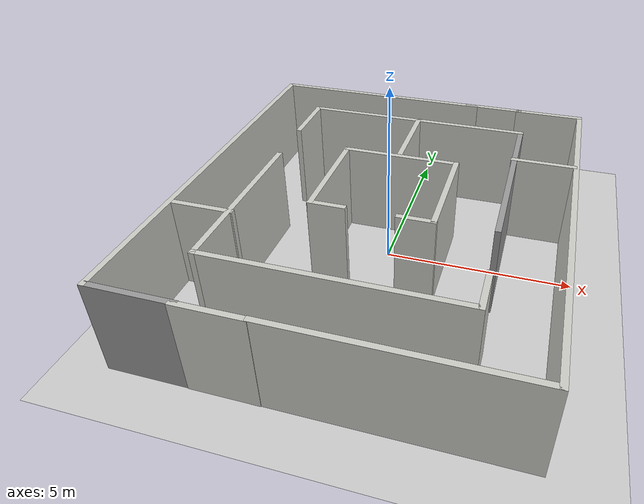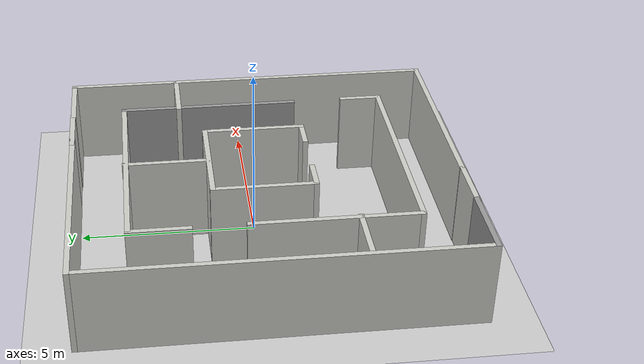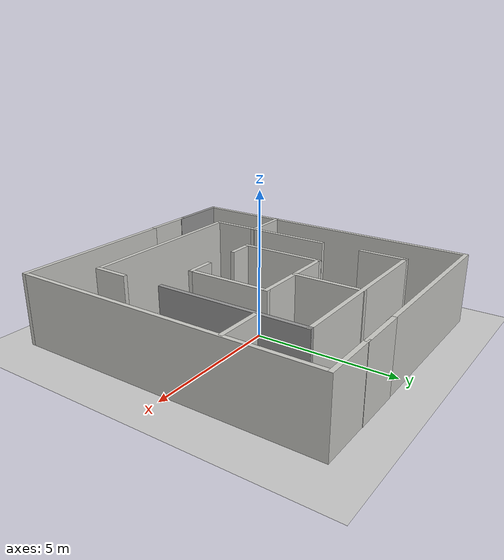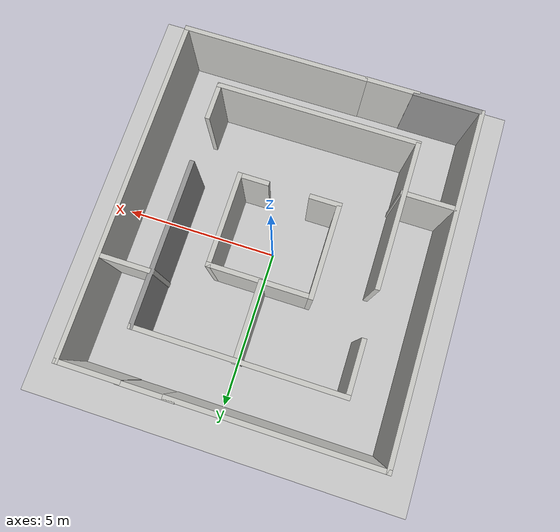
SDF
<sdf version="1.7">
 <world name="default">
  <light name="sun" type="directional">
   <pose>0 0 10 0 -0 0</pose>
   <diffuse>0.8 0.8 0.8 1</diffuse>
   <specular>0.2 0.2 0.2 1</specular>
   <attenuation>
    <range>1000</range>
    <constant>0.9</constant>
    <linear>0.01</linear>
    <quadratic>0.001</quadratic>
   </attenuation>
   <direction>-0.5 0.1 -0.9</direction>
   <spot><inner_angle>0</inner_angle><outer_angle>0</outer_angle><falloff>0</falloff></spot>
  </light>
  <model name="ground_plane">
   <static>1</static>
   <link name="link">
    <collision name="collision">
     <geometry><plane><normal>0 0 1</normal><size>100 100</size></plane></geometry>
     <surface><friction><ode><mu>100</mu><mu2>50</mu2></ode></friction></surface>
    </collision>
    <visual name="visual">
     <cast_shadows>0</cast_shadows>
     <geometry><plane><normal>0 0 1</normal><size>100 100</size></plane></geometry>
     <material>
      <script><uri>file://media/materials/scripts/gazebo.material</uri><name>Gazebo/Grey</name></script>
     </material>
    </visual>
   </link>
  </model>
  <gravity>0 0 -9.8</gravity>
  <magnetic_field>6e-06 2.3e-05 -4.2e-05</magnetic_field>
  <atmosphere type="adiabatic"/>
  <physics name="default_physics" default="0" type="ode">
   <max_step_size>0.001</max_step_size>
   <real_time_factor>1</real_time_factor>
   <real_time_update_rate>1000</real_time_update_rate>
  </physics>
  <scene><ambient>0.4 0.4 0.4 1</ambient><background>0.7 0.7 0.7 1</background><shadows>1</shadows></scene>
  <audio><device>default</device></audio>
  <spherical_coordinates>
   <surface_model>EARTH_WGS84</surface_model>
   <latitude_deg>0</latitude_deg>
   <longitude_deg>0</longitude_deg>
   <elevation>0</elevation>
   <heading_deg>0</heading_deg>
  </spherical_coordinates>
  <model name="Maze">
   <link name="Wall_13">
    <pose>-1.73209 5.42018 0 0 -0 0</pose>
    <visual name="Wall_13_Visual">
     <pose>0 0 1.25 0 -0 0</pose>
     <geometry><box><size>6.5 0.15 2.5</size></box></geometry>
     <material>
      <script><uri>file://media/materials/scripts/gazebo.material</uri><name>Gazebo/CeilingTiled</name></script>
      <ambient>1 1 1 1</ambient>
      <shader type="pixel"/>
     </material>
     <meta><layer>0</layer></meta>
    </visual>
    <collision name="Wall_13_Collision">
     <pose>0 0 1.25 0 -0 0</pose>
     <geometry><box><size>6.5 0.15 2.5</size></box></geometry>
     <surface>
      <friction>
       <ode><mu>1</mu><mu2>1</mu2><fdir1>0 0 0</fdir1><slip1>0</slip1><slip2>0</slip2></ode>
       <torsional>
        <coefficient>1</coefficient>
        <patch_radius>0</patch_radius>
        <surface_radius>0</surface_radius>
        <use_patch_radius>1</use_patch_radius>
        <ode><slip>0</slip></ode>
       </torsional>
      </friction>
      <bounce><restitution_coefficient>0</restitution_coefficient><threshold>1e+06</threshold></bounce>
      <contact>
       <collide_without_contact>0</collide_without_contact>
       <collide_without_contact_bitmask>1</collide_without_contact_bitmask>
       <collide_bitmask>1</collide_bitmask>
       <ode>
        <soft_cfm>0</soft_cfm>
        <soft_erp>0.2</soft_erp>
        <kp>1e+13</kp>
        <kd>1</kd>
        <max_vel>0.01</max_vel>
        <min_depth>0</min_depth>
       </ode>
       <bullet>
        <split_impulse>1</split_impulse>
        <split_impulse_penetration_threshold>-0.01</split_impulse_penetration_threshold>
        <soft_cfm>0</soft_cfm>
        <soft_erp>0.2</soft_erp>
        <kp>1e+13</kp>
        <kd>1</kd>
       </bullet>
      </contact>
     </surface>
    </collision>
   </link>
   <link name="Wall_15">
    <pose>-4.90709 -0.004825 0 0 0 -1.5708</pose>
    <visual name="Wall_15_Visual">
     <pose>0 0 1.25 0 -0 0</pose>
     <geometry><box><size>11 0.15 2.5</size></box></geometry>
     <material>
      <script><uri>file://media/materials/scripts/gazebo.material</uri><name>Gazebo/CeilingTiled</name></script>
      <ambient>1 1 1 1</ambient>
      <shader type="pixel"/>
     </material>
     <meta><layer>0</layer></meta>
    </visual>
    <collision name="Wall_15_Collision">
     <pose>0 0 1.25 0 -0 0</pose>
     <geometry><box><size>11 0.15 2.5</size></box></geometry>
     <surface>
      <friction>
       <ode><mu>1</mu><mu2>1</mu2><fdir1>0 0 0</fdir1><slip1>0</slip1><slip2>0</slip2></ode>
       <torsional>
        <coefficient>1</coefficient>
        <patch_radius>0</patch_radius>
        <surface_radius>0</surface_radius>
        <use_patch_radius>1</use_patch_radius>
        <ode><slip>0</slip></ode>
       </torsional>
      </friction>
      <bounce><restitution_coefficient>0</restitution_coefficient><threshold>1e+06</threshold></bounce>
      <contact>
       <collide_without_contact>0</collide_without_contact>
       <collide_without_contact_bitmask>1</collide_without_contact_bitmask>
       <collide_bitmask>1</collide_bitmask>
       <ode>
        <soft_cfm>0</soft_cfm>
        <soft_erp>0.2</soft_erp>
        <kp>1e+13</kp>
        <kd>1</kd>
        <max_vel>0.01</max_vel>
        <min_depth>0</min_depth>
       </ode>
       <bullet>
        <split_impulse>1</split_impulse>
        <split_impulse_penetration_threshold>-0.01</split_impulse_penetration_threshold>
        <soft_cfm>0</soft_cfm>
        <soft_erp>0.2</soft_erp>
        <kp>1e+13</kp>
        <kd>1</kd>
       </bullet>
      </contact>
     </surface>
    </collision>
   </link>
   <link name="Wall_16">
    <pose>-3.85709 -5.42983 0 0 -0 0</pose>
    <visual name="Wall_16_Visual">
     <pose>0 0 1.25 0 -0 0</pose>
     <geometry><box><size>2.25 0.15 2.5</size></box></geometry>
     <material>
      <script><uri>file://media/materials/scripts/gazebo.material</uri><name>Gazebo/Grey</name></script>
      <ambient>1 1 1 1</ambient>
      <shader type="pixel"/>
     </material>
     <meta><layer>0</layer></meta>
    </visual>
    <collision name="Wall_16_Collision">
     <pose>0 0 1.25 0 -0 0</pose>
     <geometry><box><size>2.25 0.15 2.5</size></box></geometry>
     <surface>
      <friction>
       <ode><mu>1</mu><mu2>1</mu2><fdir1>0 0 0</fdir1><slip1>0</slip1><slip2>0</slip2></ode>
       <torsional>
        <coefficient>1</coefficient>
        <patch_radius>0</patch_radius>
        <surface_radius>0</surface_radius>
        <use_patch_radius>1</use_patch_radius>
        <ode><slip>0</slip></ode>
       </torsional>
      </friction>
      <bounce><restitution_coefficient>0</restitution_coefficient><threshold>1e+06</threshold></bounce>
      <contact>
       <collide_without_contact>0</collide_without_contact>
       <collide_without_contact_bitmask>1</collide_without_contact_bitmask>
       <collide_bitmask>1</collide_bitmask>
       <ode>
        <soft_cfm>0</soft_cfm>
        <soft_erp>0.2</soft_erp>
        <kp>1e+13</kp>
        <kd>1</kd>
        <max_vel>0.01</max_vel>
        <min_depth>0</min_depth>
       </ode>
       <bullet>
        <split_impulse>1</split_impulse>
        <split_impulse_penetration_threshold>-0.01</split_impulse_penetration_threshold>
        <soft_cfm>0</soft_cfm>
        <soft_erp>0.2</soft_erp>
        <kp>1e+13</kp>
        <kd>1</kd>
       </bullet>
      </contact>
     </surface>
    </collision>
   </link>
   <link name="Wall_20">
    <pose>3.74088 5.42018 0 0 -0 0</pose>
    <visual name="Wall_20_Visual">
     <pose>0 0 1.25 0 -0 0</pose>
     <geometry><box><size>2 0.15 2.5</size></box></geometry>
     <material>
      <script><uri>file://media/materials/scripts/gazebo.material</uri><name>Gazebo/CeilingTiled</name></script>
      <ambient>1 1 1 1</ambient>
      <shader type="pixel"/>
     </material>
     <meta><layer>0</layer></meta>
    </visual>
    <collision name="Wall_20_Collision">
     <pose>0 0 1.25 0 -0 0</pose>
     <geometry><box><size>2 0.15 2.5</size></box></geometry>
     <surface>
      <friction>
       <ode><mu>1</mu><mu2>1</mu2><fdir1>0 0 0</fdir1><slip1>0</slip1><slip2>0</slip2></ode>
       <torsional>
        <coefficient>1</coefficient>
        <patch_radius>0</patch_radius>
        <surface_radius>0</surface_radius>
        <use_patch_radius>1</use_patch_radius>
        <ode><slip>0</slip></ode>
       </torsional>
      </friction>
      <bounce><restitution_coefficient>0</restitution_coefficient><threshold>1e+06</threshold></bounce>
      <contact>
       <collide_without_contact>0</collide_without_contact>
       <collide_without_contact_bitmask>1</collide_without_contact_bitmask>
       <collide_bitmask>1</collide_bitmask>
       <ode>
        <soft_cfm>0</soft_cfm>
        <soft_erp>0.2</soft_erp>
        <kp>1e+13</kp>
        <kd>1</kd>
        <max_vel>0.01</max_vel>
        <min_depth>0</min_depth>
       </ode>
       <bullet>
        <split_impulse>1</split_impulse>
        <split_impulse_penetration_threshold>-0.01</split_impulse_penetration_threshold>
        <soft_cfm>0</soft_cfm>
        <soft_erp>0.2</soft_erp>
        <kp>1e+13</kp>
        <kd>1</kd>
       </bullet>
      </contact>
     </surface>
    </collision>
   </link>
   <link name="Wall_21">
    <pose>4.66588 -0.004825 0 0 0 -1.5708</pose>
    <visual name="Wall_21_Visual">
     <pose>0 0 1.25 0 -0 0</pose>
     <geometry><box><size>11 0.15 2.5</size></box></geometry>
     <material>
      <script><uri>file://media/materials/scripts/gazebo.material</uri><name>Gazebo/CeilingTiled</name></script>
      <ambient>1 1 1 1</ambient>
      <shader type="pixel"/>
     </material>
     <meta><layer>0</layer></meta>
    </visual>
    <collision name="Wall_21_Collision">
     <pose>0 0 1.25 0 -0 0</pose>
     <geometry><box><size>11 0.15 2.5</size></box></geometry>
     <surface>
      <friction>
       <ode><mu>1</mu><mu2>1</mu2><fdir1>0 0 0</fdir1><slip1>0</slip1><slip2>0</slip2></ode>
       <torsional>
        <coefficient>1</coefficient>
        <patch_radius>0</patch_radius>
        <surface_radius>0</surface_radius>
        <use_patch_radius>1</use_patch_radius>
        <ode><slip>0</slip></ode>
       </torsional>
      </friction>
      <bounce><restitution_coefficient>0</restitution_coefficient><threshold>1e+06</threshold></bounce>
      <contact>
       <collide_without_contact>0</collide_without_contact>
       <collide_without_contact_bitmask>1</collide_without_contact_bitmask>
       <collide_bitmask>1</collide_bitmask>
       <ode>
        <soft_cfm>0</soft_cfm>
        <soft_erp>0.2</soft_erp>
        <kp>1e+13</kp>
        <kd>1</kd>
        <max_vel>0.01</max_vel>
        <min_depth>0</min_depth>
       </ode>
       <bullet>
        <split_impulse>1</split_impulse>
        <split_impulse_penetration_threshold>-0.01</split_impulse_penetration_threshold>
        <soft_cfm>0</soft_cfm>
        <soft_erp>0.2</soft_erp>
        <kp>1e+13</kp>
        <kd>1</kd>
       </bullet>
      </contact>
     </surface>
    </collision>
   </link>
   <link name="Wall_22">
    <pose>1.74088 -5.42983 0 0 -0 3.14159</pose>
    <visual name="Wall_22_Visual">
     <pose>0 0 1.25 0 -0 0</pose>
     <geometry><box><size>6 0.15 2.5</size></box></geometry>
     <material>
      <script><uri>file://media/materials/scripts/gazebo.material</uri><name>Gazebo/CeilingTiled</name></script>
      <ambient>1 1 1 1</ambient>
      <shader type="pixel"/>
     </material>
     <meta><layer>0</layer></meta>
    </visual>
    <collision name="Wall_22_Collision">
     <pose>0 0 1.25 0 -0 0</pose>
     <geometry><box><size>6 0.15 2.5</size></box></geometry>
     <surface>
      <friction>
       <ode><mu>1</mu><mu2>1</mu2><fdir1>0 0 0</fdir1><slip1>0</slip1><slip2>0</slip2></ode>
       <torsional>
        <coefficient>1</coefficient>
        <patch_radius>0</patch_radius>
        <surface_radius>0</surface_radius>
        <use_patch_radius>1</use_patch_radius>
        <ode><slip>0</slip></ode>
       </torsional>
      </friction>
      <bounce><restitution_coefficient>0</restitution_coefficient><threshold>1e+06</threshold></bounce>
      <contact>
       <collide_without_contact>0</collide_without_contact>
       <collide_without_contact_bitmask>1</collide_without_contact_bitmask>
       <collide_bitmask>1</collide_bitmask>
       <ode>
        <soft_cfm>0</soft_cfm>
        <soft_erp>0.2</soft_erp>
        <kp>1e+13</kp>
        <kd>1</kd>
        <max_vel>0.01</max_vel>
        <min_depth>0</min_depth>
       </ode>
       <bullet>
        <split_impulse>1</split_impulse>
        <split_impulse_penetration_threshold>-0.01</split_impulse_penetration_threshold>
        <soft_cfm>0</soft_cfm>
        <soft_erp>0.2</soft_erp>
        <kp>1e+13</kp>
        <kd>1</kd>
       </bullet>
      </contact>
     </surface>
    </collision>
   </link>
   <link name="Wall_26">
    <pose>3.0485 -3.31803 0 0 0 -1.5708</pose>
    <visual name="Wall_26_Visual">
     <pose>0 0 1.25 0 -0 0</pose>
     <geometry><box><size>1.25 0.15 2.5</size></box></geometry>
     <material>
      <script><uri>file://media/materials/scripts/gazebo.material</uri><name>Gazebo/CeilingTiled</name></script>
      <ambient>1 1 1 1</ambient>
      <shader type="pixel"/>
     </material>
     <meta><layer>0</layer></meta>
    </visual>
    <collision name="Wall_26_Collision">
     <pose>0 0 1.25 0 -0 0</pose>
     <geometry><box><size>1.25 0.15 2.5</size></box></geometry>
     <surface>
      <friction>
       <ode><mu>1</mu><mu2>1</mu2><fdir1>0 0 0</fdir1><slip1>0</slip1><slip2>0</slip2></ode>
       <torsional>
        <coefficient>1</coefficient>
        <patch_radius>0</patch_radius>
        <surface_radius>0</surface_radius>
        <use_patch_radius>1</use_patch_radius>
        <ode><slip>0</slip></ode>
       </torsional>
      </friction>
      <bounce><restitution_coefficient>0</restitution_coefficient><threshold>1e+06</threshold></bounce>
      <contact>
       <collide_without_contact>0</collide_without_contact>
       <collide_without_contact_bitmask>1</collide_without_contact_bitmask>
       <collide_bitmask>1</collide_bitmask>
       <ode>
        <soft_cfm>0</soft_cfm>
        <soft_erp>0.2</soft_erp>
        <kp>1e+13</kp>
        <kd>1</kd>
        <max_vel>0.01</max_vel>
        <min_depth>0</min_depth>
       </ode>
       <bullet>
        <split_impulse>1</split_impulse>
        <split_impulse_penetration_threshold>-0.01</split_impulse_penetration_threshold>
        <soft_cfm>0</soft_cfm>
        <soft_erp>0.2</soft_erp>
        <kp>1e+13</kp>
        <kd>1</kd>
       </bullet>
      </contact>
     </surface>
    </collision>
   </link>
   <link name="Wall_27">
    <pose>-0.126502 -3.86803 0 0 -0 3.14159</pose>
    <visual name="Wall_27_Visual">
     <pose>0 0 1.25 0 -0 0</pose>
     <geometry><box><size>6.5 0.15 2.5</size></box></geometry>
     <material>
      <script><uri>file://media/materials/scripts/gazebo.material</uri><name>Gazebo/CeilingTiled</name></script>
      <ambient>1 1 1 1</ambient>
      <shader type="pixel"/>
     </material>
     <meta><layer>0</layer></meta>
    </visual>
    <collision name="Wall_27_Collision">
     <pose>0 0 1.25 0 -0 0</pose>
     <geometry><box><size>6.5 0.15 2.5</size></box></geometry>
     <surface>
      <friction>
       <ode><mu>1</mu><mu2>1</mu2><fdir1>0 0 0</fdir1><slip1>0</slip1><slip2>0</slip2></ode>
       <torsional>
        <coefficient>1</coefficient>
        <patch_radius>0</patch_radius>
        <surface_radius>0</surface_radius>
        <use_patch_radius>1</use_patch_radius>
        <ode><slip>0</slip></ode>
       </torsional>
      </friction>
      <bounce><restitution_coefficient>0</restitution_coefficient><threshold>1e+06</threshold></bounce>
      <contact>
       <collide_without_contact>0</collide_without_contact>
       <collide_without_contact_bitmask>1</collide_without_contact_bitmask>
       <collide_bitmask>1</collide_bitmask>
       <ode>
        <soft_cfm>0</soft_cfm>
        <soft_erp>0.2</soft_erp>
        <kp>1e+13</kp>
        <kd>1</kd>
        <max_vel>0.01</max_vel>
        <min_depth>0</min_depth>
       </ode>
       <bullet>
        <split_impulse>1</split_impulse>
        <split_impulse_penetration_threshold>-0.01</split_impulse_penetration_threshold>
        <soft_cfm>0</soft_cfm>
        <soft_erp>0.2</soft_erp>
        <kp>1e+13</kp>
        <kd>1</kd>
       </bullet>
      </contact>
     </surface>
    </collision>
   </link>
   <link name="Wall_28">
    <pose>-3.3015 -1.56803 0 0 -0 1.5708</pose>
    <visual name="Wall_28_Visual">
     <pose>0 0 1.25 0 -0 0</pose>
     <geometry><box><size>4.75 0.15 2.5</size></box></geometry>
     <material>
      <script><uri>file://media/materials/scripts/gazebo.material</uri><name>Gazebo/CeilingTiled</name></script>
      <ambient>1 1 1 1</ambient>
      <shader type="pixel"/>
     </material>
     <meta><layer>0</layer></meta>
    </visual>
    <collision name="Wall_28_Collision">
     <pose>0 0 1.25 0 -0 0</pose>
     <geometry><box><size>4.75 0.15 2.5</size></box></geometry>
     <surface>
      <friction>
       <ode><mu>1</mu><mu2>1</mu2><fdir1>0 0 0</fdir1><slip1>0</slip1><slip2>0</slip2></ode>
       <torsional>
        <coefficient>1</coefficient>
        <patch_radius>0</patch_radius>
        <surface_radius>0</surface_radius>
        <use_patch_radius>1</use_patch_radius>
        <ode><slip>0</slip></ode>
       </torsional>
      </friction>
      <bounce><restitution_coefficient>0</restitution_coefficient><threshold>1e+06</threshold></bounce>
      <contact>
       <collide_without_contact>0</collide_without_contact>
       <collide_without_contact_bitmask>1</collide_without_contact_bitmask>
       <collide_bitmask>1</collide_bitmask>
       <ode>
        <soft_cfm>0</soft_cfm>
        <soft_erp>0.2</soft_erp>
        <kp>1e+13</kp>
        <kd>1</kd>
        <max_vel>0.01</max_vel>
        <min_depth>0</min_depth>
       </ode>
       <bullet>
        <split_impulse>1</split_impulse>
        <split_impulse_penetration_threshold>-0.01</split_impulse_penetration_threshold>
        <soft_cfm>0</soft_cfm>
        <soft_erp>0.2</soft_erp>
        <kp>1e+13</kp>
        <kd>1</kd>
       </bullet>
      </contact>
     </surface>
    </collision>
   </link>
   <link name="Wall_30">
    <pose>-3.32528 3.10307 0 0 -0 1.5708</pose>
    <visual name="Wall_30_Visual">
     <pose>0 0 1.25 0 -0 0</pose>
     <geometry><box><size>1.75 0.15 2.5</size></box></geometry>
     <material>
      <script><uri>file://media/materials/scripts/gazebo.material</uri><name>Gazebo/CeilingTiled</name></script>
      <ambient>1 1 1 1</ambient>
      <shader type="pixel"/>
     </material>
     <meta><layer>0</layer></meta>
    </visual>
    <collision name="Wall_30_Collision">
     <pose>0 0 1.25 0 -0 0</pose>
     <geometry><box><size>1.75 0.15 2.5</size></box></geometry>
     <surface>
      <friction>
       <ode><mu>1</mu><mu2>1</mu2><fdir1>0 0 0</fdir1><slip1>0</slip1><slip2>0</slip2></ode>
       <torsional>
        <coefficient>1</coefficient>
        <patch_radius>0</patch_radius>
        <surface_radius>0</surface_radius>
        <use_patch_radius>1</use_patch_radius>
        <ode><slip>0</slip></ode>
       </torsional>
      </friction>
      <bounce><restitution_coefficient>0</restitution_coefficient><threshold>1e+06</threshold></bounce>
      <contact>
       <collide_without_contact>0</collide_without_contact>
       <collide_without_contact_bitmask>1</collide_without_contact_bitmask>
       <collide_bitmask>1</collide_bitmask>
       <ode>
        <soft_cfm>0</soft_cfm>
        <soft_erp>0.2</soft_erp>
        <kp>1e+13</kp>
        <kd>1</kd>
        <max_vel>0.01</max_vel>
        <min_depth>0</min_depth>
       </ode>
       <bullet>
        <split_impulse>1</split_impulse>
        <split_impulse_penetration_threshold>-0.01</split_impulse_penetration_threshold>
        <soft_cfm>0</soft_cfm>
        <soft_erp>0.2</soft_erp>
        <kp>1e+13</kp>
        <kd>1</kd>
       </bullet>
      </contact>
     </surface>
    </collision>
   </link>
   <link name="Wall_31">
    <pose>-0.150278 3.90307 0 0 -0 0</pose>
    <visual name="Wall_31_Visual">
     <pose>0 0 1.25 0 -0 0</pose>
     <geometry><box><size>6.5 0.15 2.5</size></box></geometry>
     <material>
      <script><uri>file://media/materials/scripts/gazebo.material</uri><name>Gazebo/CeilingTiled</name></script>
      <ambient>1 1 1 1</ambient>
      <shader type="pixel"/>
     </material>
     <meta><layer>0</layer></meta>
    </visual>
    <collision name="Wall_31_Collision">
     <pose>0 0 1.25 0 -0 0</pose>
     <geometry><box><size>6.5 0.15 2.5</size></box></geometry>
     <surface>
      <friction>
       <ode><mu>1</mu><mu2>1</mu2><fdir1>0 0 0</fdir1><slip1>0</slip1><slip2>0</slip2></ode>
       <torsional>
        <coefficient>1</coefficient>
        <patch_radius>0</patch_radius>
        <surface_radius>0</surface_radius>
        <use_patch_radius>1</use_patch_radius>
        <ode><slip>0</slip></ode>
       </torsional>
      </friction>
      <bounce><restitution_coefficient>0</restitution_coefficient><threshold>1e+06</threshold></bounce>
      <contact>
       <collide_without_contact>0</collide_without_contact>
       <collide_without_contact_bitmask>1</collide_without_contact_bitmask>
       <collide_bitmask>1</collide_bitmask>
       <ode>
        <soft_cfm>0</soft_cfm>
        <soft_erp>0.2</soft_erp>
        <kp>1e+13</kp>
        <kd>1</kd>
        <max_vel>0.01</max_vel>
        <min_depth>0</min_depth>
       </ode>
       <bullet>
        <split_impulse>1</split_impulse>
        <split_impulse_penetration_threshold>-0.01</split_impulse_penetration_threshold>
        <soft_cfm>0</soft_cfm>
        <soft_erp>0.2</soft_erp>
        <kp>1e+13</kp>
        <kd>1</kd>
       </bullet>
      </contact>
     </surface>
    </collision>
   </link>
   <link name="Wall_32">
    <pose>3.02472 1.35307 0 0 0 -1.5708</pose>
    <visual name="Wall_32_Visual">
     <pose>0 0 1.25 0 -0 0</pose>
     <geometry><box><size>5.25 0.15 2.5</size></box></geometry>
     <material>
      <script><uri>file://media/materials/scripts/gazebo.material</uri><name>Gazebo/Grey</name></script>
      <ambient>1 1 1 1</ambient>
      <shader type="pixel"/>
     </material>
     <meta><layer>0</layer></meta>
    </visual>
    <collision name="Wall_32_Collision">
     <pose>0 0 1.25 0 -0 0</pose>
     <geometry><box><size>5.25 0.15 2.5</size></box></geometry>
     <surface>
      <friction>
       <ode><mu>1</mu><mu2>1</mu2><fdir1>0 0 0</fdir1><slip1>0</slip1><slip2>0</slip2></ode>
       <torsional>
        <coefficient>1</coefficient>
        <patch_radius>0</patch_radius>
        <surface_radius>0</surface_radius>
        <use_patch_radius>1</use_patch_radius>
        <ode><slip>0</slip></ode>
       </torsional>
      </friction>
      <bounce><restitution_coefficient>0</restitution_coefficient><threshold>1e+06</threshold></bounce>
      <contact>
       <collide_without_contact>0</collide_without_contact>
       <collide_without_contact_bitmask>1</collide_without_contact_bitmask>
       <collide_bitmask>1</collide_bitmask>
       <ode>
        <soft_cfm>0</soft_cfm>
        <soft_erp>0.2</soft_erp>
        <kp>1e+13</kp>
        <kd>1</kd>
        <max_vel>0.01</max_vel>
        <min_depth>0</min_depth>
       </ode>
       <bullet>
        <split_impulse>1</split_impulse>
        <split_impulse_penetration_threshold>-0.01</split_impulse_penetration_threshold>
        <soft_cfm>0</soft_cfm>
        <soft_erp>0.2</soft_erp>
        <kp>1e+13</kp>
        <kd>1</kd>
       </bullet>
      </contact>
     </surface>
    </collision>
   </link>
   <link name="Wall_34">
    <pose>-4.06057 -2.20975 0 0 -0 0</pose>
    <visual name="Wall_34_Visual">
     <pose>0 0 1.25 0 -0 0</pose>
     <geometry><box><size>1.75 0.15 2.5</size></box></geometry>
     <material>
      <script><uri>file://media/materials/scripts/gazebo.material</uri><name>Gazebo/CeilingTiled</name></script>
      <ambient>1 1 1 1</ambient>
      <shader type="pixel"/>
     </material>
     <meta><layer>0</layer></meta>
    </visual>
    <collision name="Wall_34_Collision">
     <pose>0 0 1.25 0 -0 0</pose>
     <geometry><box><size>1.75 0.15 2.5</size></box></geometry>
     <surface>
      <friction>
       <ode><mu>1</mu><mu2>1</mu2><fdir1>0 0 0</fdir1><slip1>0</slip1><slip2>0</slip2></ode>
       <torsional>
        <coefficient>1</coefficient>
        <patch_radius>0</patch_radius>
        <surface_radius>0</surface_radius>
        <use_patch_radius>1</use_patch_radius>
        <ode><slip>0</slip></ode>
       </torsional>
      </friction>
      <bounce><restitution_coefficient>0</restitution_coefficient><threshold>1e+06</threshold></bounce>
      <contact>
       <collide_without_contact>0</collide_without_contact>
       <collide_without_contact_bitmask>1</collide_without_contact_bitmask>
       <collide_bitmask>1</collide_bitmask>
       <ode>
        <soft_cfm>0</soft_cfm>
        <soft_erp>0.2</soft_erp>
        <kp>1e+13</kp>
        <kd>1</kd>
        <max_vel>0.01</max_vel>
        <min_depth>0</min_depth>
       </ode>
       <bullet>
        <split_impulse>1</split_impulse>
        <split_impulse_penetration_threshold>-0.01</split_impulse_penetration_threshold>
        <soft_cfm>0</soft_cfm>
        <soft_erp>0.2</soft_erp>
        <kp>1e+13</kp>
        <kd>1</kd>
       </bullet>
      </contact>
     </surface>
    </collision>
   </link>
   <link name="Wall_34_clone">
    <pose>-2.06153 -5.44185 0 0 -0 0</pose>
    <visual name="Wall_34_Visual">
     <pose>0 0 1.25 0 -0 0</pose>
     <geometry><box><size>1.75 0.15 2.5</size></box></geometry>
     <material>
      <script><uri>file://media/materials/scripts/gazebo.material</uri><name>Gazebo/CeilingTiled</name></script>
      <ambient>1 1 1 1</ambient>
      <shader type="pixel"/>
     </material>
     <meta><layer>0</layer></meta>
    </visual>
    <collision name="Wall_34_Collision">
     <pose>0 0 1.25 0 -0 0</pose>
     <geometry><box><size>1.75 0.15 2.5</size></box></geometry>
     <surface>
      <friction>
       <ode><mu>1</mu><mu2>1</mu2><fdir1>0 0 0</fdir1><slip1>0</slip1><slip2>0</slip2></ode>
       <torsional>
        <coefficient>1</coefficient>
        <patch_radius>0</patch_radius>
        <surface_radius>0</surface_radius>
        <use_patch_radius>1</use_patch_radius>
        <ode><slip>0</slip></ode>
       </torsional>
      </friction>
      <bounce><restitution_coefficient>0</restitution_coefficient><threshold>1e+06</threshold></bounce>
      <contact>
       <collide_without_contact>0</collide_without_contact>
       <collide_without_contact_bitmask>1</collide_without_contact_bitmask>
       <collide_bitmask>1</collide_bitmask>
       <ode>
        <soft_cfm>0</soft_cfm>
        <soft_erp>0.2</soft_erp>
        <kp>1e+13</kp>
        <kd>1</kd>
        <max_vel>0.01</max_vel>
        <min_depth>0</min_depth>
       </ode>
       <bullet>
        <split_impulse>1</split_impulse>
        <split_impulse_penetration_threshold>-0.01</split_impulse_penetration_threshold>
        <soft_cfm>0</soft_cfm>
        <soft_erp>0.2</soft_erp>
        <kp>1e+13</kp>
        <kd>1</kd>
       </bullet>
      </contact>
     </surface>
    </collision>
   </link>
   <link name="Wall_34_clone_0">
    <pose>2.02378 5.43214 0 0 -0 0</pose>
    <visual name="Wall_34_Visual">
     <pose>0 0 1.25 0 -0 0</pose>
     <geometry><box><size>1.75 0.15 2.5</size></box></geometry>
     <material>
      <script><uri>file://media/materials/scripts/gazebo.material</uri><name>Gazebo/CeilingTiled</name></script>
      <ambient>1 1 1 1</ambient>
      <shader type="pixel"/>
     </material>
     <meta><layer>0</layer></meta>
    </visual>
    <collision name="Wall_34_Collision">
     <pose>0 0 1.25 0 -0 0</pose>
     <geometry><box><size>1.75 0.15 2.5</size></box></geometry>
     <surface>
      <friction>
       <ode><mu>1</mu><mu2>1</mu2><fdir1>0 0 0</fdir1><slip1>0</slip1><slip2>0</slip2></ode>
       <torsional>
        <coefficient>1</coefficient>
        <patch_radius>0</patch_radius>
        <surface_radius>0</surface_radius>
        <use_patch_radius>1</use_patch_radius>
        <ode><slip>0</slip></ode>
       </torsional>
      </friction>
      <bounce><restitution_coefficient>0</restitution_coefficient><threshold>1e+06</threshold></bounce>
      <contact>
       <collide_without_contact>0</collide_without_contact>
       <collide_without_contact_bitmask>1</collide_without_contact_bitmask>
       <collide_bitmask>1</collide_bitmask>
       <ode>
        <soft_cfm>0</soft_cfm>
        <soft_erp>0.2</soft_erp>
        <kp>1e+13</kp>
        <kd>1</kd>
        <max_vel>0.01</max_vel>
        <min_depth>0</min_depth>
       </ode>
       <bullet>
        <split_impulse>1</split_impulse>
        <split_impulse_penetration_threshold>-0.01</split_impulse_penetration_threshold>
        <soft_cfm>0</soft_cfm>
        <soft_erp>0.2</soft_erp>
        <kp>1e+13</kp>
        <kd>1</kd>
       </bullet>
      </contact>
     </surface>
    </collision>
   </link>
   <link name="Wall_36">
    <pose>3.80197 2.25655 0 0 -0 0</pose>
    <visual name="Wall_36_Visual">
     <pose>0 0 1.25 0 -0 0</pose>
     <geometry><box><size>1.75 0.15 2.5</size></box></geometry>
     <material>
      <script><uri>file://media/materials/scripts/gazebo.material</uri><name>Gazebo/CeilingTiled</name></script>
      <ambient>1 1 1 1</ambient>
      <shader type="pixel"/>
     </material>
     <meta><layer>0</layer></meta>
    </visual>
    <collision name="Wall_36_Collision">
     <pose>0 0 1.25 0 -0 0</pose>
     <geometry><box><size>1.75 0.15 2.5</size></box></geometry>
     <surface>
      <friction>
       <ode><mu>1</mu><mu2>1</mu2><fdir1>0 0 0</fdir1><slip1>0</slip1><slip2>0</slip2></ode>
       <torsional>
        <coefficient>1</coefficient>
        <patch_radius>0</patch_radius>
        <surface_radius>0</surface_radius>
        <use_patch_radius>1</use_patch_radius>
        <ode><slip>0</slip></ode>
       </torsional>
      </friction>
      <bounce><restitution_coefficient>0</restitution_coefficient><threshold>1e+06</threshold></bounce>
      <contact>
       <collide_without_contact>0</collide_without_contact>
       <collide_without_contact_bitmask>1</collide_without_contact_bitmask>
       <collide_bitmask>1</collide_bitmask>
       <ode>
        <soft_cfm>0</soft_cfm>
        <soft_erp>0.2</soft_erp>
        <kp>1e+13</kp>
        <kd>1</kd>
        <max_vel>0.01</max_vel>
        <min_depth>0</min_depth>
       </ode>
       <bullet>
        <split_impulse>1</split_impulse>
        <split_impulse_penetration_threshold>-0.01</split_impulse_penetration_threshold>
        <soft_cfm>0</soft_cfm>
        <soft_erp>0.2</soft_erp>
        <kp>1e+13</kp>
        <kd>1</kd>
       </bullet>
      </contact>
     </surface>
    </collision>
   </link>
   <link name="Wall_38">
    <pose>-1.14494 -1.27927 0 0 -0 3.14159</pose>
    <visual name="Wall_38_Visual">
     <pose>0 0 1.25 0 -0 0</pose>
     <geometry><box><size>1 0.15 2.5</size></box></geometry>
     <material>
      <script><uri>file://media/materials/scripts/gazebo.material</uri><name>Gazebo/CeilingTiled</name></script>
      <ambient>1 1 1 1</ambient>
      <shader type="pixel"/>
     </material>
     <meta><layer>0</layer></meta>
    </visual>
    <collision name="Wall_38_Collision">
     <pose>0 0 1.25 0 -0 0</pose>
     <geometry><box><size>1 0.15 2.5</size></box></geometry>
     <surface>
      <friction>
       <ode><mu>1</mu><mu2>1</mu2><fdir1>0 0 0</fdir1><slip1>0</slip1><slip2>0</slip2></ode>
       <torsional>
        <coefficient>1</coefficient>
        <patch_radius>0</patch_radius>
        <surface_radius>0</surface_radius>
        <use_patch_radius>1</use_patch_radius>
        <ode><slip>0</slip></ode>
       </torsional>
      </friction>
      <bounce><restitution_coefficient>0</restitution_coefficient><threshold>1e+06</threshold></bounce>
      <contact>
       <collide_without_contact>0</collide_without_contact>
       <collide_without_contact_bitmask>1</collide_without_contact_bitmask>
       <collide_bitmask>1</collide_bitmask>
       <ode>
        <soft_cfm>0</soft_cfm>
        <soft_erp>0.2</soft_erp>
        <kp>1e+13</kp>
        <kd>1</kd>
        <max_vel>0.01</max_vel>
        <min_depth>0</min_depth>
       </ode>
       <bullet>
        <split_impulse>1</split_impulse>
        <split_impulse_penetration_threshold>-0.01</split_impulse_penetration_threshold>
        <soft_cfm>0</soft_cfm>
        <soft_erp>0.2</soft_erp>
        <kp>1e+13</kp>
        <kd>1</kd>
       </bullet>
      </contact>
     </surface>
    </collision>
   </link>
   <link name="Wall_39">
    <pose>-1.56994 0.145732 0 0 -0 1.5708</pose>
    <visual name="Wall_39_Visual">
     <pose>0 0 1.25 0 -0 0</pose>
     <geometry><box><size>3 0.15 2.5</size></box></geometry>
     <material>
      <script><uri>file://media/materials/scripts/gazebo.material</uri><name>Gazebo/CeilingTiled</name></script>
      <ambient>1 1 1 1</ambient>
      <shader type="pixel"/>
     </material>
     <meta><layer>0</layer></meta>
    </visual>
    <collision name="Wall_39_Collision">
     <pose>0 0 1.25 0 -0 0</pose>
     <geometry><box><size>3 0.15 2.5</size></box></geometry>
     <surface>
      <friction>
       <ode><mu>1</mu><mu2>1</mu2><fdir1>0 0 0</fdir1><slip1>0</slip1><slip2>0</slip2></ode>
       <torsional>
        <coefficient>1</coefficient>
        <patch_radius>0</patch_radius>
        <surface_radius>0</surface_radius>
        <use_patch_radius>1</use_patch_radius>
        <ode><slip>0</slip></ode>
       </torsional>
      </friction>
      <bounce><restitution_coefficient>0</restitution_coefficient><threshold>1e+06</threshold></bounce>
      <contact>
       <collide_without_contact>0</collide_without_contact>
       <collide_without_contact_bitmask>1</collide_without_contact_bitmask>
       <collide_bitmask>1</collide_bitmask>
       <ode>
        <soft_cfm>0</soft_cfm>
        <soft_erp>0.2</soft_erp>
        <kp>1e+13</kp>
        <kd>1</kd>
        <max_vel>0.01</max_vel>
        <min_depth>0</min_depth>
       </ode>
       <bullet>
        <split_impulse>1</split_impulse>
        <split_impulse_penetration_threshold>-0.01</split_impulse_penetration_threshold>
        <soft_cfm>0</soft_cfm>
        <soft_erp>0.2</soft_erp>
        <kp>1e+13</kp>
        <kd>1</kd>
       </bullet>
      </contact>
     </surface>
    </collision>
   </link>
   <link name="Wall_40">
    <pose>-0.019939 1.57073 0 0 -0 0</pose>
    <visual name="Wall_40_Visual">
     <pose>0 0 1.25 0 -0 0</pose>
     <geometry><box><size>3.25 0.15 2.5</size></box></geometry>
     <material>
      <script><uri>file://media/materials/scripts/gazebo.material</uri><name>Gazebo/CeilingTiled</name></script>
      <ambient>1 1 1 1</ambient>
      <shader type="pixel"/>
     </material>
     <meta><layer>0</layer></meta>
    </visual>
    <collision name="Wall_40_Collision">
     <pose>0 0 1.25 0 -0 0</pose>
     <geometry><box><size>3.25 0.15 2.5</size></box></geometry>
     <surface>
      <friction>
       <ode><mu>1</mu><mu2>1</mu2><fdir1>0 0 0</fdir1><slip1>0</slip1><slip2>0</slip2></ode>
       <torsional>
        <coefficient>1</coefficient>
        <patch_radius>0</patch_radius>
        <surface_radius>0</surface_radius>
        <use_patch_radius>1</use_patch_radius>
        <ode><slip>0</slip></ode>
       </torsional>
      </friction>
      <bounce><restitution_coefficient>0</restitution_coefficient><threshold>1e+06</threshold></bounce>
      <contact>
       <collide_without_contact>0</collide_without_contact>
       <collide_without_contact_bitmask>1</collide_without_contact_bitmask>
       <collide_bitmask>1</collide_bitmask>
       <ode>
        <soft_cfm>0</soft_cfm>
        <soft_erp>0.2</soft_erp>
        <kp>1e+13</kp>
        <kd>1</kd>
        <max_vel>0.01</max_vel>
        <min_depth>0</min_depth>
       </ode>
       <bullet>
        <split_impulse>1</split_impulse>
        <split_impulse_penetration_threshold>-0.01</split_impulse_penetration_threshold>
        <soft_cfm>0</soft_cfm>
        <soft_erp>0.2</soft_erp>
        <kp>1e+13</kp>
        <kd>1</kd>
       </bullet>
      </contact>
     </surface>
    </collision>
   </link>
   <link name="Wall_41">
    <pose>1.53006 0.145732 0 0 0 -1.5708</pose>
    <visual name="Wall_41_Visual">
     <pose>0 0 1.25 0 -0 0</pose>
     <geometry><box><size>3 0.15 2.5</size></box></geometry>
     <material>
      <script><uri>file://media/materials/scripts/gazebo.material</uri><name>Gazebo/CeilingTiled</name></script>
      <ambient>1 1 1 1</ambient>
      <shader type="pixel"/>
     </material>
     <meta><layer>0</layer></meta>
    </visual>
    <collision name="Wall_41_Collision">
     <pose>0 0 1.25 0 -0 0</pose>
     <geometry><box><size>3 0.15 2.5</size></box></geometry>
     <surface>
      <friction>
       <ode><mu>1</mu><mu2>1</mu2><fdir1>0 0 0</fdir1><slip1>0</slip1><slip2>0</slip2></ode>
       <torsional>
        <coefficient>1</coefficient>
        <patch_radius>0</patch_radius>
        <surface_radius>0</surface_radius>
        <use_patch_radius>1</use_patch_radius>
        <ode><slip>0</slip></ode>
       </torsional>
      </friction>
      <bounce><restitution_coefficient>0</restitution_coefficient><threshold>1e+06</threshold></bounce>
      <contact>
       <collide_without_contact>0</collide_without_contact>
       <collide_without_contact_bitmask>1</collide_without_contact_bitmask>
       <collide_bitmask>1</collide_bitmask>
       <ode>
        <soft_cfm>0</soft_cfm>
        <soft_erp>0.2</soft_erp>
        <kp>1e+13</kp>
        <kd>1</kd>
        <max_vel>0.01</max_vel>
        <min_depth>0</min_depth>
       </ode>
       <bullet>
        <split_impulse>1</split_impulse>
        <split_impulse_penetration_threshold>-0.01</split_impulse_penetration_threshold>
        <soft_cfm>0</soft_cfm>
        <soft_erp>0.2</soft_erp>
        <kp>1e+13</kp>
        <kd>1</kd>
       </bullet>
      </contact>
     </surface>
    </collision>
   </link>
   <link name="Wall_42">
    <pose>1.10506 -1.27927 0 0 -0 3.14159</pose>
    <visual name="Wall_42_Visual">
     <pose>0 0 1.25 0 -0 0</pose>
     <geometry><box><size>1 0.15 2.5</size></box></geometry>
     <material>
      <script><uri>file://media/materials/scripts/gazebo.material</uri><name>Gazebo/CeilingTiled</name></script>
      <ambient>1 1 1 1</ambient>
      <shader type="pixel"/>
     </material>
     <meta><layer>0</layer></meta>
    </visual>
    <collision name="Wall_42_Collision">
     <pose>0 0 1.25 0 -0 0</pose>
     <geometry><box><size>1 0.15 2.5</size></box></geometry>
     <surface>
      <friction>
       <ode><mu>1</mu><mu2>1</mu2><fdir1>0 0 0</fdir1><slip1>0</slip1><slip2>0</slip2></ode>
       <torsional>
        <coefficient>1</coefficient>
        <patch_radius>0</patch_radius>
        <surface_radius>0</surface_radius>
        <use_patch_radius>1</use_patch_radius>
        <ode><slip>0</slip></ode>
       </torsional>
      </friction>
      <bounce><restitution_coefficient>0</restitution_coefficient><threshold>1e+06</threshold></bounce>
      <contact>
       <collide_without_contact>0</collide_without_contact>
       <collide_without_contact_bitmask>1</collide_without_contact_bitmask>
       <collide_bitmask>1</collide_bitmask>
       <ode>
        <soft_cfm>0</soft_cfm>
        <soft_erp>0.2</soft_erp>
        <kp>1e+13</kp>
        <kd>1</kd>
        <max_vel>0.01</max_vel>
        <min_depth>0</min_depth>
       </ode>
       <bullet>
        <split_impulse>1</split_impulse>
        <split_impulse_penetration_threshold>-0.01</split_impulse_penetration_threshold>
        <soft_cfm>0</soft_cfm>
        <soft_erp>0.2</soft_erp>
        <kp>1e+13</kp>
        <kd>1</kd>
       </bullet>
      </contact>
     </surface>
    </collision>
   </link>
   <link name="Wall_44">
    <pose>-0.068604 2.75641 0 0 0 -1.5708</pose>
    <visual name="Wall_44_Visual">
     <pose>0 0 1.25 0 -0 0</pose>
     <geometry><box><size>2.5 0.15 2.5</size></box></geometry>
     <material>
      <script><uri>file://media/materials/scripts/gazebo.material</uri><name>Gazebo/CeilingTiled</name></script>
      <ambient>1 1 1 1</ambient>
      <shader type="pixel"/>
     </material>
     <meta><layer>0</layer></meta>
    </visual>
    <collision name="Wall_44_Collision">
     <pose>0 0 1.25 0 -0 0</pose>
     <geometry><box><size>2.5 0.15 2.5</size></box></geometry>
     <surface>
      <friction>
       <ode><mu>1</mu><mu2>1</mu2><fdir1>0 0 0</fdir1><slip1>0</slip1><slip2>0</slip2></ode>
       <torsional>
        <coefficient>1</coefficient>
        <patch_radius>0</patch_radius>
        <surface_radius>0</surface_radius>
        <use_patch_radius>1</use_patch_radius>
        <ode><slip>0</slip></ode>
       </torsional>
      </friction>
      <bounce><restitution_coefficient>0</restitution_coefficient><threshold>1e+06</threshold></bounce>
      <contact>
       <collide_without_contact>0</collide_without_contact>
       <collide_without_contact_bitmask>1</collide_without_contact_bitmask>
       <collide_bitmask>1</collide_bitmask>
       <ode>
        <soft_cfm>0</soft_cfm>
        <soft_erp>0.2</soft_erp>
        <kp>1e+13</kp>
        <kd>1</kd>
        <max_vel>0.01</max_vel>
        <min_depth>0</min_depth>
       </ode>
       <bullet>
        <split_impulse>1</split_impulse>
        <split_impulse_penetration_threshold>-0.01</split_impulse_penetration_threshold>
        <soft_cfm>0</soft_cfm>
        <soft_erp>0.2</soft_erp>
        <kp>1e+13</kp>
        <kd>1</kd>
       </bullet>
      </contact>
     </surface>
    </collision>
   </link>
   <static>1</static>
   <pose>-0.006341 -0.29229 0 0 -0 0</pose>
  </model>
 </world>
</sdf>
